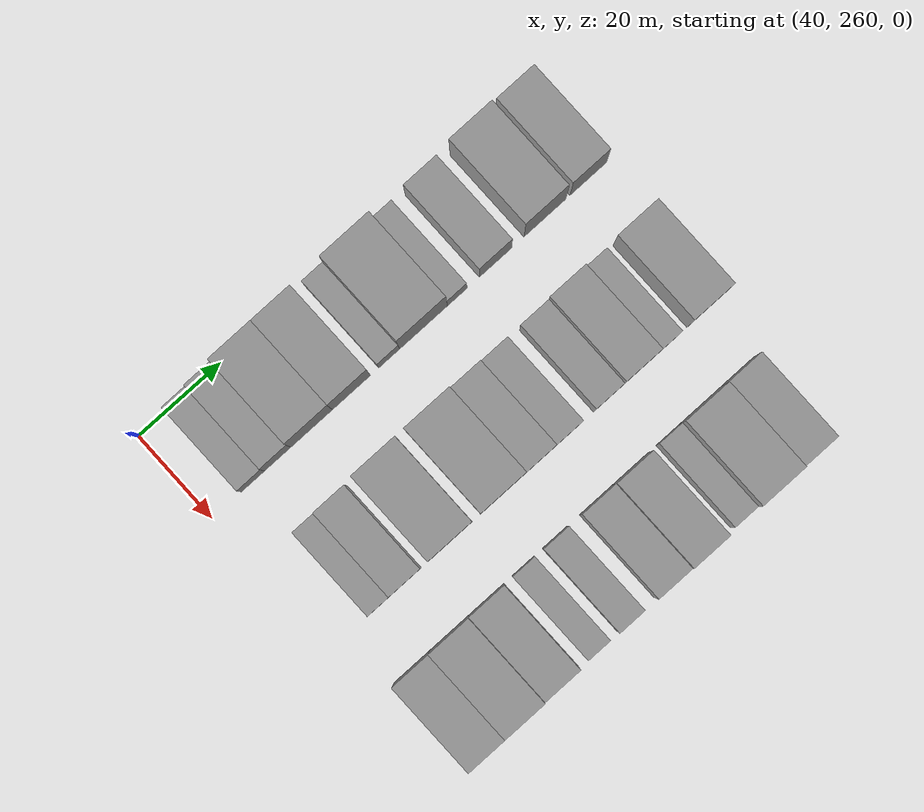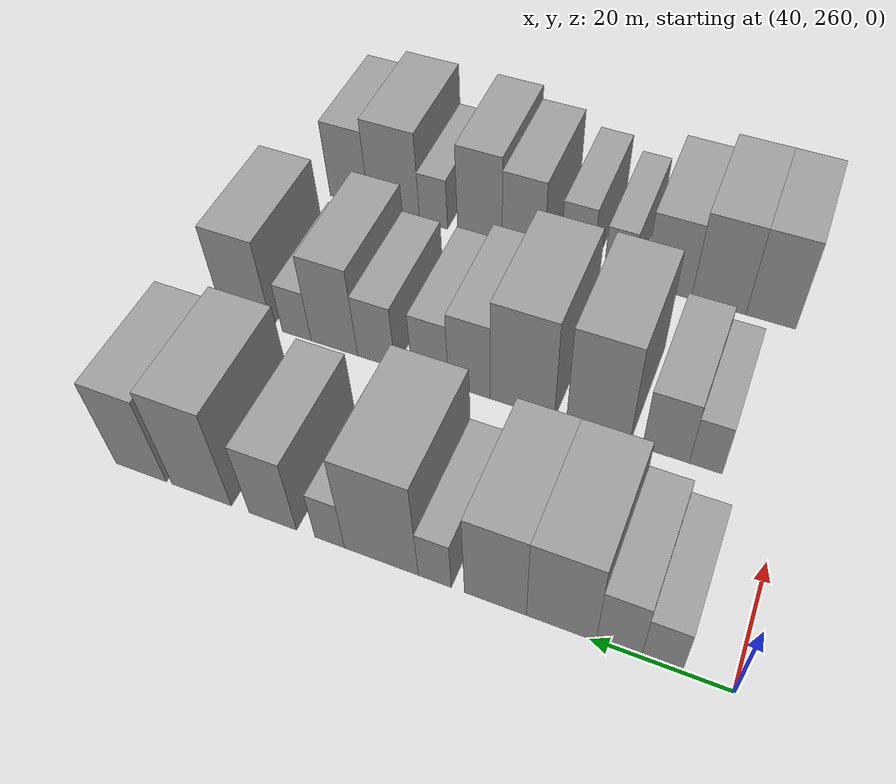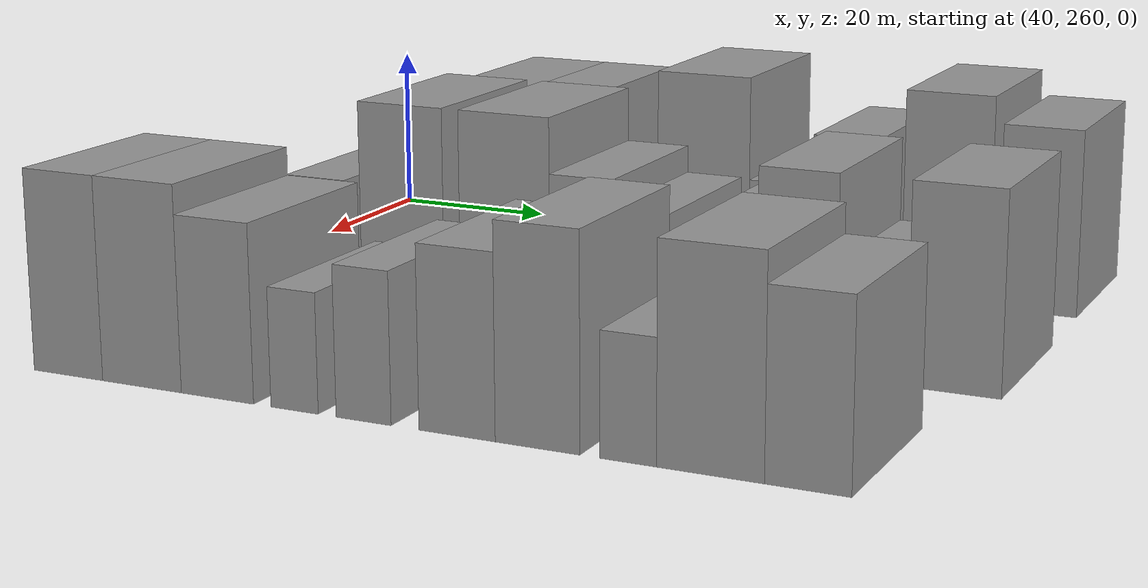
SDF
<sdf version="1.6">
 <world name="default">
  <model name="building_70">
   <static>1</static>
   <pose>50.0000 269.9573 0 0.000000 0.000000 0.000000</pose>
   <link name="link">
    <pose>0 0 6.00 0 0 0</pose>
    <collision name="collision"><geometry><box><size>20.0000 5.6558 12.0000</size></box></geometry></collision>
    <visual name="visual">
     <cast_shadows>0</cast_shadows>
     <geometry><box><size>20.0000 5.6558 12.0000</size></box></geometry>
     <material>
      <script>
       <uri>model://grey_wall/materials/scripts</uri>
       <uri>model://grey_wall/materials/textures</uri>
       <name>vrc/grey_wall</name>
      </script>
     </material>
    </visual>
   </link>
  </model>
  <model name="building_71">
   <static>1</static>
   <pose>50.0000 275.9751 0 0.000000 0.000000 0.000000</pose>
   <link name="link">
    <pose>0 0 7.50 0 0 0</pose>
    <collision name="collision"><geometry><box><size>20.0000 6.3798 15.0000</size></box></geometry></collision>
    <visual name="visual">
     <cast_shadows>0</cast_shadows>
     <geometry><box><size>20.0000 6.3798 15.0000</size></box></geometry>
     <material>
      <script>
       <uri>model://grey_wall/materials/scripts</uri>
       <uri>model://grey_wall/materials/textures</uri>
       <name>vrc/grey_wall</name>
      </script>
     </material>
    </visual>
   </link>
  </model>
  <model name="building_72">
   <static>1</static>
   <pose>50.0000 284.2249 0 0.000000 0.000000 0.000000</pose>
   <link name="link">
    <pose>0 0 10.50 0 0 0</pose>
    <collision name="collision"><geometry><box><size>20.0000 10.1198 21.0000</size></box></geometry></collision>
    <visual name="visual">
     <cast_shadows>0</cast_shadows>
     <geometry><box><size>20.0000 10.1198 21.0000</size></box></geometry>
     <material>
      <script>
       <uri>model://grey_wall/materials/scripts</uri>
       <uri>model://grey_wall/materials/textures</uri>
       <name>vrc/grey_wall</name>
      </script>
     </material>
    </visual>
   </link>
  </model>
  <model name="building_73">
   <static>1</static>
   <pose>50.0000 293.9123 0 0.000000 0.000000 0.000000</pose>
   <link name="link">
    <pose>0 0 10.50 0 0 0</pose>
    <collision name="collision"><geometry><box><size>20.0000 9.2550 21.0000</size></box></geometry></collision>
    <visual name="visual">
     <cast_shadows>0</cast_shadows>
     <geometry><box><size>20.0000 9.2550 21.0000</size></box></geometry>
     <material>
      <script>
       <uri>model://grey_wall/materials/scripts</uri>
       <uri>model://grey_wall/materials/textures</uri>
       <name>vrc/grey_wall</name>
      </script>
     </material>
    </visual>
   </link>
  </model>
  <model name="building_74">
   <static>1</static>
   <pose>50.0000 303.0808 0 0.000000 0.000000 0.000000</pose>
   <link name="link">
    <pose>0 0 6.00 0 0 0</pose>
    <collision name="collision"><geometry><box><size>20.0000 5.0820 12.0000</size></box></geometry></collision>
    <visual name="visual">
     <cast_shadows>0</cast_shadows>
     <geometry><box><size>20.0000 5.0820 12.0000</size></box></geometry>
     <material>
      <script>
       <uri>model://grey_wall/materials/scripts</uri>
       <uri>model://grey_wall/materials/textures</uri>
       <name>vrc/grey_wall</name>
      </script>
     </material>
    </visual>
   </link>
  </model>
  <model name="building_75">
   <static>1</static>
   <pose>50.0000 311.4420 0 0.000000 0.000000 0.000000</pose>
   <link name="link">
    <pose>0 0 12.00 0 0 0</pose>
    <collision name="collision"><geometry><box><size>20.0000 11.6403 24.0000</size></box></geometry></collision>
    <visual name="visual">
     <cast_shadows>0</cast_shadows>
     <geometry><box><size>20.0000 11.6403 24.0000</size></box></geometry>
     <material>
      <script>
       <uri>model://grey_wall/materials/scripts</uri>
       <uri>model://grey_wall/materials/textures</uri>
       <name>vrc/grey_wall</name>
      </script>
     </material>
    </visual>
   </link>
  </model>
  <model name="building_76">
   <static>1</static>
   <pose>50.0000 319.6657 0 0.000000 0.000000 0.000000</pose>
   <link name="link">
    <pose>0 0 6.00 0 0 0</pose>
    <collision name="collision"><geometry><box><size>20.0000 4.8071 12.0000</size></box></geometry></collision>
    <visual name="visual">
     <cast_shadows>0</cast_shadows>
     <geometry><box><size>20.0000 4.8071 12.0000</size></box></geometry>
     <material>
      <script>
       <uri>model://grey_wall/materials/scripts</uri>
       <uri>model://grey_wall/materials/textures</uri>
       <name>vrc/grey_wall</name>
      </script>
     </material>
    </visual>
   </link>
  </model>
  <model name="building_77">
   <static>1</static>
   <pose>50.0000 329.0180 0 0.000000 0.000000 0.000000</pose>
   <link name="link">
    <pose>0 0 9.00 0 0 0</pose>
    <collision name="collision"><geometry><box><size>20.0000 7.8975 18.0000</size></box></geometry></collision>
    <visual name="visual">
     <cast_shadows>0</cast_shadows>
     <geometry><box><size>20.0000 7.8975 18.0000</size></box></geometry>
     <material>
      <script>
       <uri>model://grey_wall/materials/scripts</uri>
       <uri>model://grey_wall/materials/textures</uri>
       <name>vrc/grey_wall</name>
      </script>
     </material>
    </visual>
   </link>
  </model>
  <model name="building_78">
   <static>1</static>
   <pose>50.0000 341.0778 0 0.000000 0.000000 0.000000</pose>
   <link name="link">
    <pose>0 0 12.00 0 0 0</pose>
    <collision name="collision"><geometry><box><size>20.0000 10.2221 24.0000</size></box></geometry></collision>
    <visual name="visual">
     <cast_shadows>0</cast_shadows>
     <geometry><box><size>20.0000 10.2221 24.0000</size></box></geometry>
     <material>
      <script>
       <uri>model://grey_wall/materials/scripts</uri>
       <uri>model://grey_wall/materials/textures</uri>
       <name>vrc/grey_wall</name>
      </script>
     </material>
    </visual>
   </link>
  </model>
  <model name="building_79">
   <static>1</static>
   <pose>50.0000 351.6595 0 0.000000 0.000000 0.000000</pose>
   <link name="link">
    <pose>0 0 10.50 0 0 0</pose>
    <collision name="collision"><geometry><box><size>20.0000 8.9413 21.0000</size></box></geometry></collision>
    <visual name="visual">
     <cast_shadows>0</cast_shadows>
     <geometry><box><size>20.0000 8.9413 21.0000</size></box></geometry>
     <material>
      <script>
       <uri>model://grey_wall/materials/scripts</uri>
       <uri>model://grey_wall/materials/textures</uri>
       <name>vrc/grey_wall</name>
      </script>
     </material>
    </visual>
   </link>
  </model>
  <model name="building_147">
   <static>1</static>
   <pose>82.0000 272.0291 0 0.000000 0.000000 0.000000</pose>
   <link name="link">
    <pose>0 0 6.00 0 0 0</pose>
    <collision name="collision"><geometry><box><size>20.0000 5.1385 12.0000</size></box></geometry></collision>
    <visual name="visual">
     <cast_shadows>0</cast_shadows>
     <geometry><box><size>20.0000 5.1385 12.0000</size></box></geometry>
     <material>
      <script>
       <uri>model://grey_wall/materials/scripts</uri>
       <uri>model://grey_wall/materials/textures</uri>
       <name>vrc/grey_wall</name>
      </script>
     </material>
    </visual>
   </link>
  </model>
  <model name="building_148">
   <static>1</static>
   <pose>82.0000 278.3401 0 0.000000 0.000000 0.000000</pose>
   <link name="link">
    <pose>0 0 7.50 0 0 0</pose>
    <collision name="collision"><geometry><box><size>20.0000 7.4835 15.0000</size></box></geometry></collision>
    <visual name="visual">
     <cast_shadows>0</cast_shadows>
     <geometry><box><size>20.0000 7.4835 15.0000</size></box></geometry>
     <material>
      <script>
       <uri>model://grey_wall/materials/scripts</uri>
       <uri>model://grey_wall/materials/textures</uri>
       <name>vrc/grey_wall</name>
      </script>
     </material>
    </visual>
   </link>
  </model>
  <model name="building_149">
   <static>1</static>
   <pose>82.0000 289.2809 0 0.000000 0.000000 0.000000</pose>
   <link name="link">
    <pose>0 0 12.00 0 0 0</pose>
    <collision name="collision"><geometry><box><size>20.0000 10.3980 24.0000</size></box></geometry></collision>
    <visual name="visual">
     <cast_shadows>0</cast_shadows>
     <geometry><box><size>20.0000 10.3980 24.0000</size></box></geometry>
     <material>
      <script>
       <uri>model://grey_wall/materials/scripts</uri>
       <uri>model://grey_wall/materials/textures</uri>
       <name>vrc/grey_wall</name>
      </script>
     </material>
    </visual>
   </link>
  </model>
  <model name="building_150">
   <static>1</static>
   <pose>82.0000 301.8825 0 0.000000 0.000000 0.000000</pose>
   <link name="link">
    <pose>0 0 12.00 0 0 0</pose>
    <collision name="collision"><geometry><box><size>20.0000 10.8053 24.0000</size></box></geometry></collision>
    <visual name="visual">
     <cast_shadows>0</cast_shadows>
     <geometry><box><size>20.0000 10.8053 24.0000</size></box></geometry>
     <material>
      <script>
       <uri>model://grey_wall/materials/scripts</uri>
       <uri>model://grey_wall/materials/textures</uri>
       <name>vrc/grey_wall</name>
      </script>
     </material>
    </visual>
   </link>
  </model>
  <model name="building_151">
   <static>1</static>
   <pose>82.0000 310.9233 0 0.000000 0.000000 0.000000</pose>
   <link name="link">
    <pose>0 0 9.00 0 0 0</pose>
    <collision name="collision"><geometry><box><size>20.0000 7.2763 18.0000</size></box></geometry></collision>
    <visual name="visual">
     <cast_shadows>0</cast_shadows>
     <geometry><box><size>20.0000 7.2763 18.0000</size></box></geometry>
     <material>
      <script>
       <uri>model://grey_wall/materials/scripts</uri>
       <uri>model://grey_wall/materials/textures</uri>
       <name>vrc/grey_wall</name>
      </script>
     </material>
    </visual>
   </link>
  </model>
  <model name="building_152">
   <static>1</static>
   <pose>82.0000 317.7840 0 0.000000 0.000000 0.000000</pose>
   <link name="link">
    <pose>0 0 7.50 0 0 0</pose>
    <collision name="collision"><geometry><box><size>20.0000 6.4449 15.0000</size></box></geometry></collision>
    <visual name="visual">
     <cast_shadows>0</cast_shadows>
     <geometry><box><size>20.0000 6.4449 15.0000</size></box></geometry>
     <material>
      <script>
       <uri>model://grey_wall/materials/scripts</uri>
       <uri>model://grey_wall/materials/textures</uri>
       <name>vrc/grey_wall</name>
      </script>
     </material>
    </visual>
   </link>
  </model>
  <model name="building_153">
   <static>1</static>
   <pose>82.0000 327.4127 0 0.000000 0.000000 0.000000</pose>
   <link name="link">
    <pose>0 0 7.50 0 0 0</pose>
    <collision name="collision"><geometry><box><size>20.0000 6.8125 15.0000</size></box></geometry></collision>
    <visual name="visual">
     <cast_shadows>0</cast_shadows>
     <geometry><box><size>20.0000 6.8125 15.0000</size></box></geometry>
     <material>
      <script>
       <uri>model://grey_wall/materials/scripts</uri>
       <uri>model://grey_wall/materials/textures</uri>
       <name>vrc/grey_wall</name>
      </script>
     </material>
    </visual>
   </link>
  </model>
  <model name="building_154">
   <static>1</static>
   <pose>82.0000 335.1139 0 0.000000 0.000000 0.000000</pose>
   <link name="link">
    <pose>0 0 10.50 0 0 0</pose>
    <collision name="collision"><geometry><box><size>20.0000 8.5899 21.0000</size></box></geometry></collision>
    <visual name="visual">
     <cast_shadows>0</cast_shadows>
     <geometry><box><size>20.0000 8.5899 21.0000</size></box></geometry>
     <material>
      <script>
       <uri>model://grey_wall/materials/scripts</uri>
       <uri>model://grey_wall/materials/textures</uri>
       <name>vrc/grey_wall</name>
      </script>
     </material>
    </visual>
   </link>
  </model>
  <model name="building_155">
   <static>1</static>
   <pose>82.0000 342.1255 0 0.000000 0.000000 0.000000</pose>
   <link name="link">
    <pose>0 0 6.00 0 0 0</pose>
    <collision name="collision"><geometry><box><size>20.0000 5.4333 12.0000</size></box></geometry></collision>
    <visual name="visual">
     <cast_shadows>0</cast_shadows>
     <geometry><box><size>20.0000 5.4333 12.0000</size></box></geometry>
     <material>
      <script>
       <uri>model://grey_wall/materials/scripts</uri>
       <uri>model://grey_wall/materials/textures</uri>
       <name>vrc/grey_wall</name>
      </script>
     </material>
    </visual>
   </link>
  </model>
  <model name="building_156">
   <static>1</static>
   <pose>82.0000 351.6545 0 0.000000 0.000000 0.000000</pose>
   <link name="link">
    <pose>0 0 10.50 0 0 0</pose>
    <collision name="collision"><geometry><box><size>20.0000 9.6248 21.0000</size></box></geometry></collision>
    <visual name="visual">
     <cast_shadows>0</cast_shadows>
     <geometry><box><size>20.0000 9.6248 21.0000</size></box></geometry>
     <material>
      <script>
       <uri>model://grey_wall/materials/scripts</uri>
       <uri>model://grey_wall/materials/textures</uri>
       <name>vrc/grey_wall</name>
      </script>
     </material>
    </visual>
   </link>
  </model>
  <model name="building_225">
   <static>1</static>
   <pose>114.0000 268.9572 0 0.000000 0.000000 0.000000</pose>
   <link name="link">
    <pose>0 0 10.50 0 0 0</pose>
    <collision name="collision"><geometry><box><size>20.0000 8.5529 21.0000</size></box></geometry></collision>
    <visual name="visual">
     <cast_shadows>0</cast_shadows>
     <geometry><box><size>20.0000 8.5529 21.0000</size></box></geometry>
     <material>
      <script>
       <uri>model://grey_wall/materials/scripts</uri>
       <uri>model://grey_wall/materials/textures</uri>
       <name>vrc/grey_wall</name>
      </script>
     </material>
    </visual>
   </link>
  </model>
  <model name="building_226">
   <static>1</static>
   <pose>114.0000 277.9991 0 0.000000 0.000000 0.000000</pose>
   <link name="link">
    <pose>0 0 10.50 0 0 0</pose>
    <collision name="collision"><geometry><box><size>20.0000 9.5309 21.0000</size></box></geometry></collision>
    <visual name="visual">
     <cast_shadows>0</cast_shadows>
     <geometry><box><size>20.0000 9.5309 21.0000</size></box></geometry>
     <material>
      <script>
       <uri>model://grey_wall/materials/scripts</uri>
       <uri>model://grey_wall/materials/textures</uri>
       <name>vrc/grey_wall</name>
      </script>
     </material>
    </visual>
   </link>
  </model>
  <model name="building_227">
   <static>1</static>
   <pose>114.0000 286.9954 0 0.000000 0.000000 0.000000</pose>
   <link name="link">
    <pose>0 0 9.00 0 0 0</pose>
    <collision name="collision"><geometry><box><size>20.0000 8.4617 18.0000</size></box></geometry></collision>
    <visual name="visual">
     <cast_shadows>0</cast_shadows>
     <geometry><box><size>20.0000 8.4617 18.0000</size></box></geometry>
     <material>
      <script>
       <uri>model://grey_wall/materials/scripts</uri>
       <uri>model://grey_wall/materials/textures</uri>
       <name>vrc/grey_wall</name>
      </script>
     </material>
    </visual>
   </link>
  </model>
  <model name="building_228">
   <static>1</static>
   <pose>114.0000 295.9008 0 0.000000 0.000000 0.000000</pose>
   <link name="link">
    <pose>0 0 6.00 0 0 0</pose>
    <collision name="collision"><geometry><box><size>20.0000 5.3491 12.0000</size></box></geometry></collision>
    <visual name="visual">
     <cast_shadows>0</cast_shadows>
     <geometry><box><size>20.0000 5.3491 12.0000</size></box></geometry>
     <material>
      <script>
       <uri>model://grey_wall/materials/scripts</uri>
       <uri>model://grey_wall/materials/textures</uri>
       <name>vrc/grey_wall</name>
      </script>
     </material>
    </visual>
   </link>
  </model>
  <model name="building_229">
   <static>1</static>
   <pose>114.0000 303.5991 0 0.000000 0.000000 0.000000</pose>
   <link name="link">
    <pose>0 0 7.50 0 0 0</pose>
    <collision name="collision"><geometry><box><size>20.0000 6.0476 15.0000</size></box></geometry></collision>
    <visual name="visual">
     <cast_shadows>0</cast_shadows>
     <geometry><box><size>20.0000 6.0476 15.0000</size></box></geometry>
     <material>
      <script>
       <uri>model://grey_wall/materials/scripts</uri>
       <uri>model://grey_wall/materials/textures</uri>
       <name>vrc/grey_wall</name>
      </script>
     </material>
    </visual>
   </link>
  </model>
  <model name="building_230">
   <static>1</static>
   <pose>114.0000 313.6535 0 0.000000 0.000000 0.000000</pose>
   <link name="link">
    <pose>0 0 9.00 0 0 0</pose>
    <collision name="collision"><geometry><box><size>20.0000 8.0613 18.0000</size></box></geometry></collision>
    <visual name="visual">
     <cast_shadows>0</cast_shadows>
     <geometry><box><size>20.0000 8.0613 18.0000</size></box></geometry>
     <material>
      <script>
       <uri>model://grey_wall/materials/scripts</uri>
       <uri>model://grey_wall/materials/textures</uri>
       <name>vrc/grey_wall</name>
      </script>
     </material>
    </visual>
   </link>
  </model>
  <model name="building_231">
   <static>1</static>
   <pose>114.0000 322.0093 0 0.000000 0.000000 0.000000</pose>
   <link name="link">
    <pose>0 0 10.50 0 0 0</pose>
    <collision name="collision"><geometry><box><size>20.0000 8.6503 21.0000</size></box></geometry></collision>
    <visual name="visual">
     <cast_shadows>0</cast_shadows>
     <geometry><box><size>20.0000 8.6503 21.0000</size></box></geometry>
     <material>
      <script>
       <uri>model://grey_wall/materials/scripts</uri>
       <uri>model://grey_wall/materials/textures</uri>
       <name>vrc/grey_wall</name>
      </script>
     </material>
    </visual>
   </link>
  </model>
  <model name="building_232">
   <static>1</static>
   <pose>114.0000 331.1112 0 0.000000 0.000000 0.000000</pose>
   <link name="link">
    <pose>0 0 6.00 0 0 0</pose>
    <collision name="collision"><geometry><box><size>20.0000 5.5535 12.0000</size></box></geometry></collision>
    <visual name="visual">
     <cast_shadows>0</cast_shadows>
     <geometry><box><size>20.0000 5.5535 12.0000</size></box></geometry>
     <material>
      <script>
       <uri>model://grey_wall/materials/scripts</uri>
       <uri>model://grey_wall/materials/textures</uri>
       <name>vrc/grey_wall</name>
      </script>
     </material>
    </visual>
   </link>
  </model>
  <model name="building_233">
   <static>1</static>
   <pose>114.0000 339.0271 0 0.000000 0.000000 0.000000</pose>
   <link name="link">
    <pose>0 0 10.50 0 0 0</pose>
    <collision name="collision"><geometry><box><size>20.0000 10.2783 21.0000</size></box></geometry></collision>
    <visual name="visual">
     <cast_shadows>0</cast_shadows>
     <geometry><box><size>20.0000 10.2783 21.0000</size></box></geometry>
     <material>
      <script>
       <uri>model://grey_wall/materials/scripts</uri>
       <uri>model://grey_wall/materials/textures</uri>
       <name>vrc/grey_wall</name>
      </script>
     </material>
    </visual>
   </link>
  </model>
  <model name="building_234">
   <static>1</static>
   <pose>114.0000 348.1678 0 0.000000 0.000000 0.000000</pose>
   <link name="link">
    <pose>0 0 9.00 0 0 0</pose>
    <collision name="collision"><geometry><box><size>20.0000 8.0033 18.0000</size></box></geometry></collision>
    <visual name="visual">
     <cast_shadows>0</cast_shadows>
     <geometry><box><size>20.0000 8.0033 18.0000</size></box></geometry>
     <material>
      <script>
       <uri>model://grey_wall/materials/scripts</uri>
       <uri>model://grey_wall/materials/textures</uri>
       <name>vrc/grey_wall</name>
      </script>
     </material>
    </visual>
   </link>
  </model>
 </world>
</sdf>
